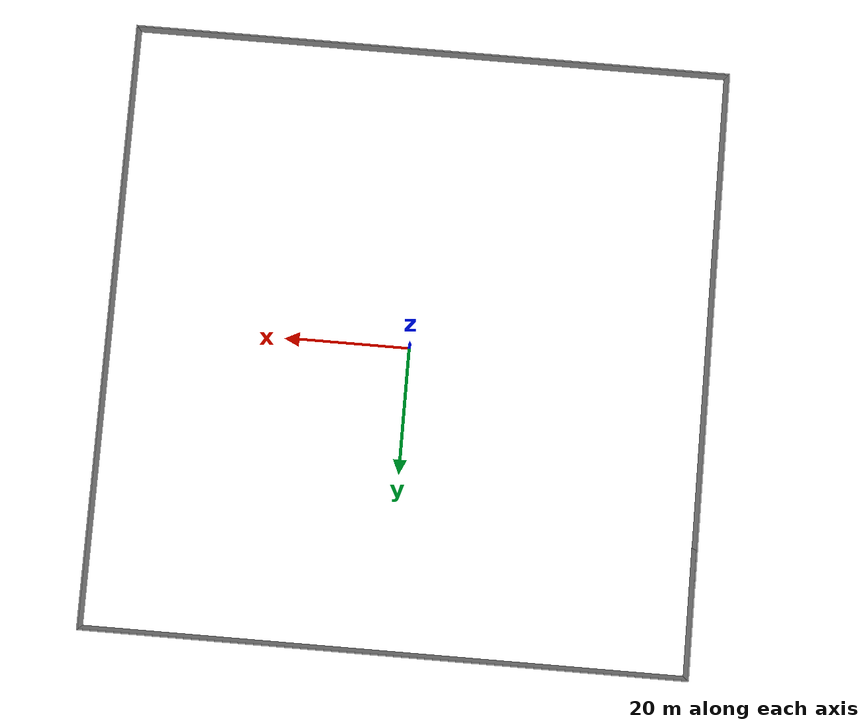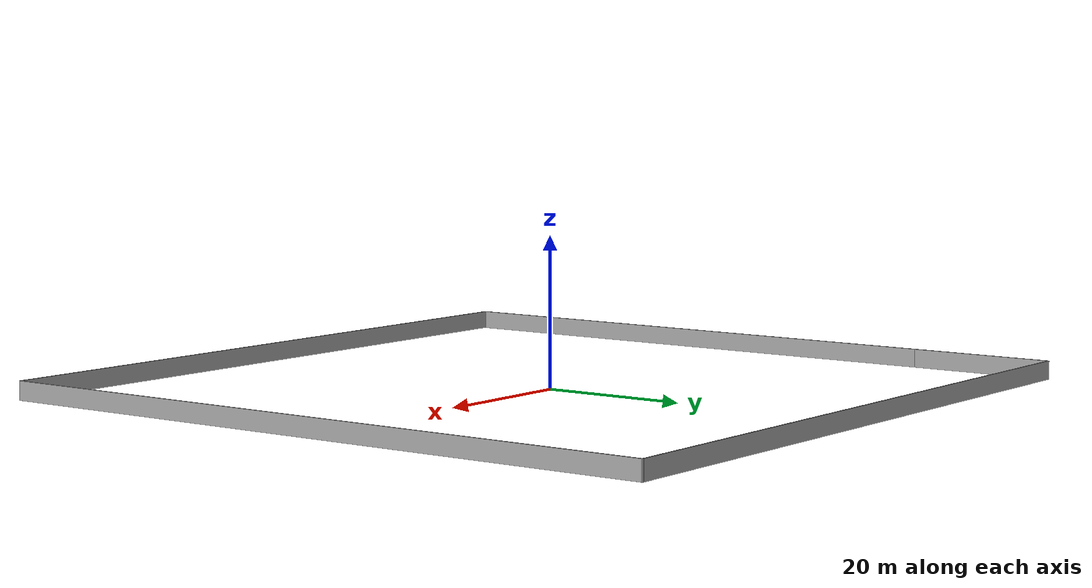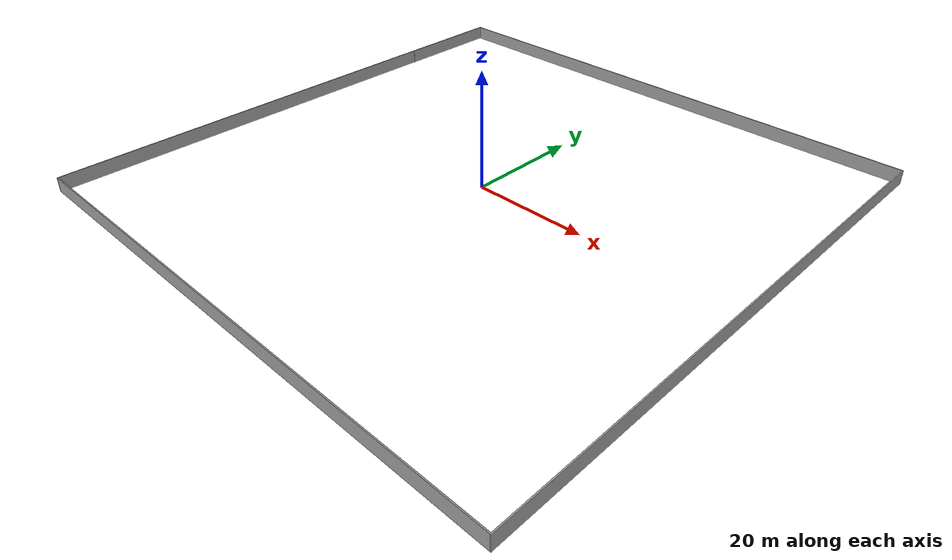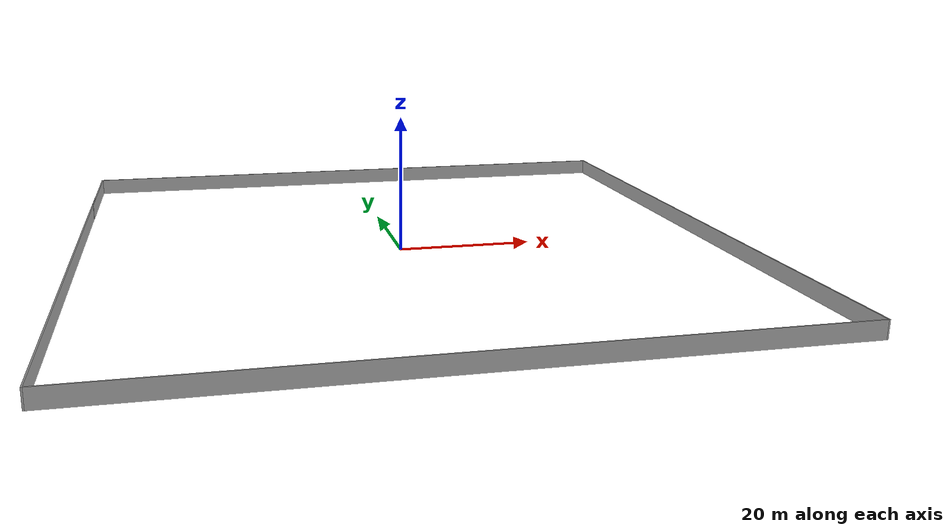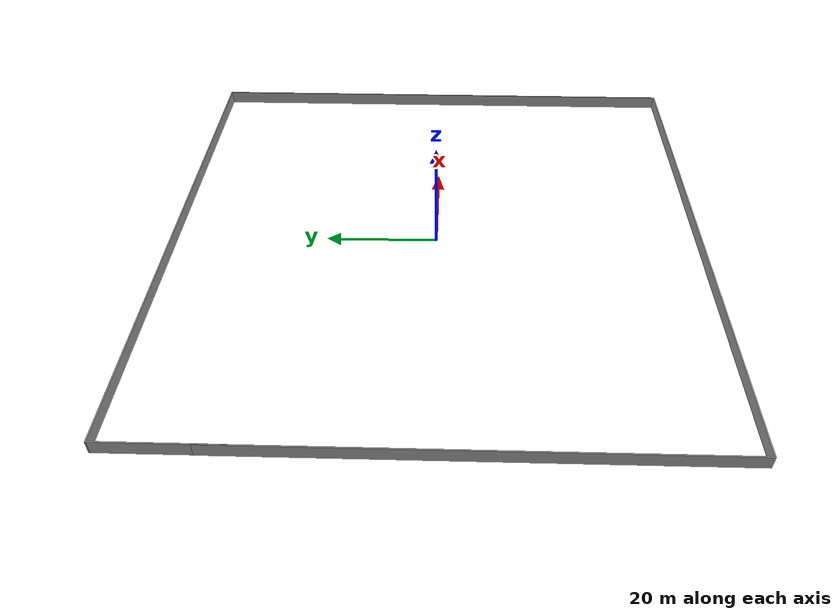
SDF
<?xml version='1.0'?>
<sdf version='1.4'>
  <model name='CustomWorld_Empty'>
    <link name='Wall_3'>
      <collision name='Wall_3_Collision'>
        <geometry>
          <box>
            <size>80.6095 0.2 2.5</size>
          </box>
        </geometry>
        <pose>0 0 1.25 0 -0 0</pose>
      </collision>
      <visual name='Wall_3_Visual'>
        <pose>0 0 1.25 0 -0 0</pose>
        <geometry>
          <box>
            <size>80.6095 0.2 2.5</size>
          </box>
        </geometry>
        <material>
          <script>
            <uri>file://media/materials/scripts/gazebo.material</uri>
            <name>Gazebo/Grey</name>
          </script>
        </material>
      </visual>
      <velocity_decay>
        <linear>0</linear>
        <angular>0</angular>
      </velocity_decay>
      <pose>-47.0296 -7.43308 0 0 0 -1.5708</pose>
    </link>
    <link name='Wall_4'>
      <collision name='Wall_4_Collision'>
        <geometry>
          <box>
            <size>94.8169 0.2 2.5</size>
          </box>
        </geometry>
        <pose>0 0 1.25 0 -0 0</pose>
      </collision>
      <visual name='Wall_4_Visual'>
        <pose>0 0 1.25 0 -0 0</pose>
        <geometry>
          <box>
            <size>94.8169 0.2 2.5</size>
          </box>
        </geometry>
        <material>
          <script>
            <uri>file://media/materials/scripts/gazebo.material</uri>
            <name>Gazebo/Grey</name>
          </script>
        </material>
      </visual>
      <velocity_decay>
        <linear>0</linear>
        <angular>0</angular>
      </velocity_decay>
      <pose>0.278792 -47.6378 0 0 -0 0</pose>
    </link>
    <link name='Wall_5'>
      <collision name='Wall_5_Collision'>
        <geometry>
          <box>
            <size>95.4369 0.2 2.5</size>
          </box>
        </geometry>
        <pose>0 0 1.25 0 -0 0</pose>
      </collision>
      <visual name='Wall_5_Visual'>
        <pose>0 0 1.25 0 -0 0</pose>
        <geometry>
          <box>
            <size>95.4369 0.2 2.5</size>
          </box>
        </geometry>
        <material>
          <script>
            <uri>file://media/materials/scripts/gazebo.material</uri>
            <name>Gazebo/Grey</name>
          </script>
        </material>
      </visual>
      <velocity_decay>
        <linear>0</linear>
        <angular>0</angular>
      </velocity_decay>
      <pose>47.5872 -0.019394 0 0 -0 1.5708</pose>
    </link>
    <link name='Wall_6'>
      <collision name='Wall_6_Collision'>
        <geometry>
          <box>
            <size>94.7875 0.2 2.5</size>
          </box>
        </geometry>
        <pose>0 0 1.25 0 -0 0</pose>
      </collision>
      <visual name='Wall_6_Visual'>
        <pose>0 0 1.25 0 -0 0</pose>
        <geometry>
          <box>
            <size>94.7875 0.2 2.5</size>
          </box>
        </geometry>
        <material>
          <script>
            <uri>file://media/materials/scripts/gazebo.material</uri>
            <name>Gazebo/Grey</name>
          </script>
        </material>
      </visual>
      <velocity_decay>
        <linear>0</linear>
        <angular>0</angular>
      </velocity_decay>
      <pose>0.293456 47.599 0 0 -0 3.14159</pose>
    </link>
    <link name='Wall_7'>
      <collision name='Wall_7_Collision'>
        <geometry>
          <box>
            <size>20.1132 0.2 2.5</size>
          </box>
        </geometry>
        <pose>0 0 1.25 0 -0 0</pose>
      </collision>
      <visual name='Wall_7_Visual'>
        <pose>0 0 1.25 0 -0 0</pose>
        <geometry>
          <box>
            <size>20.1132 0.2 2.5</size>
          </box>
        </geometry>
        <material>
          <script>
            <uri>file://media/materials/scripts/gazebo.material</uri>
            <name>Gazebo/Grey</name>
          </script>
        </material>
      </visual>
      <velocity_decay>
        <linear>0</linear>
        <angular>0</angular>
      </velocity_decay>
      <pose>-47.0003 37.6425 0 0 0 -1.5708</pose>
    </link>
    <static>1</static>
  </model>
</sdf>
